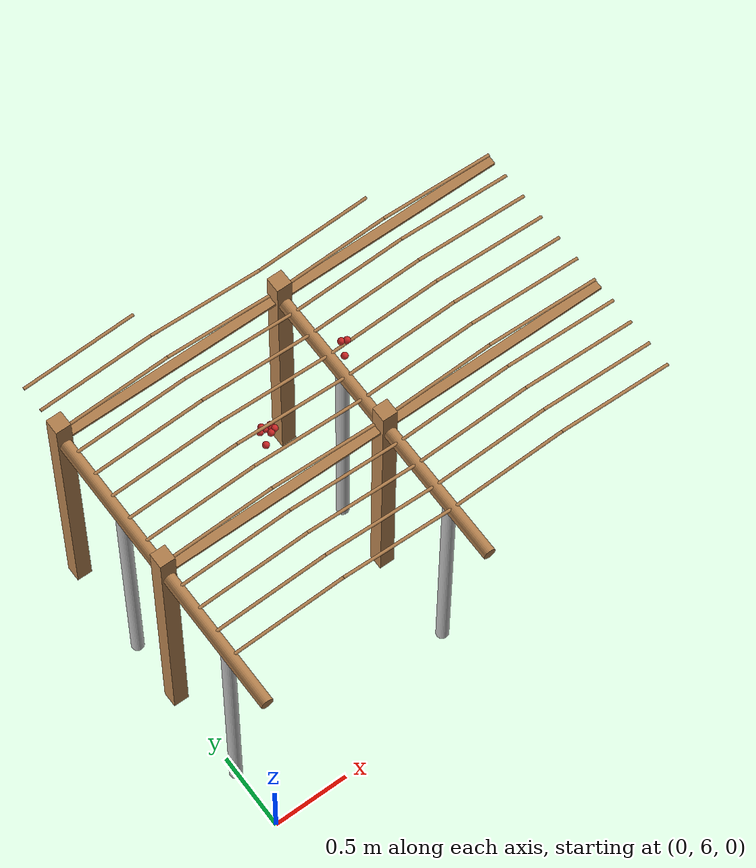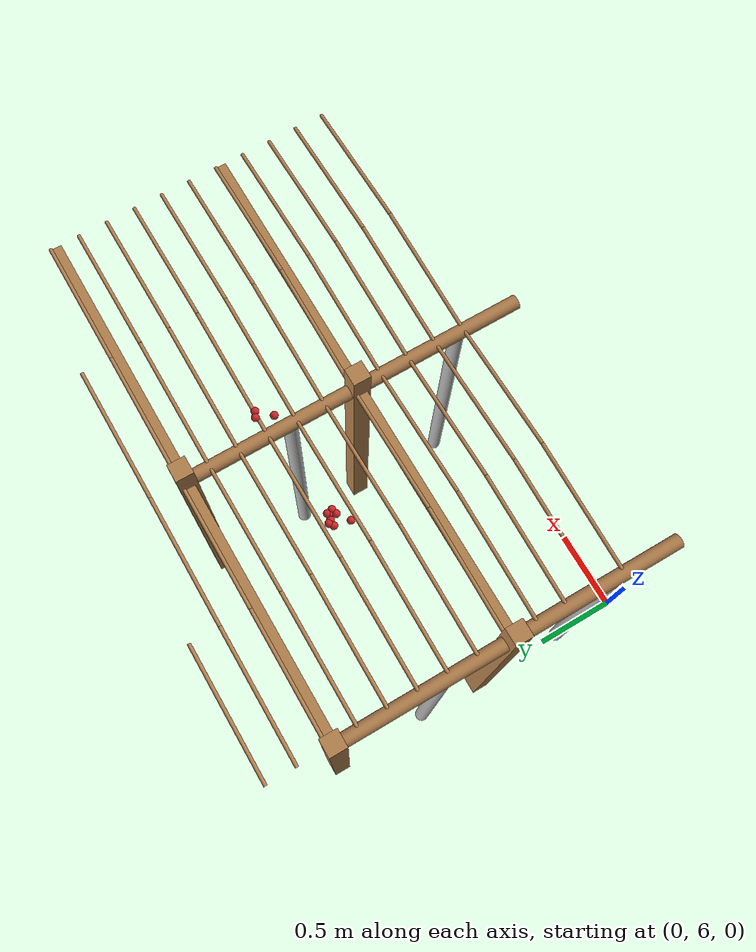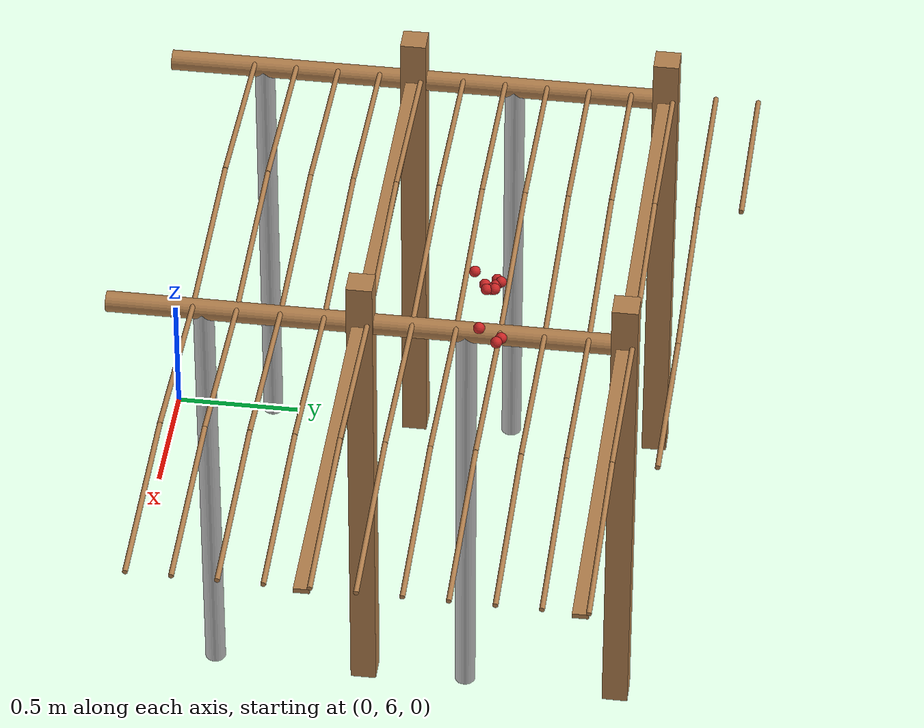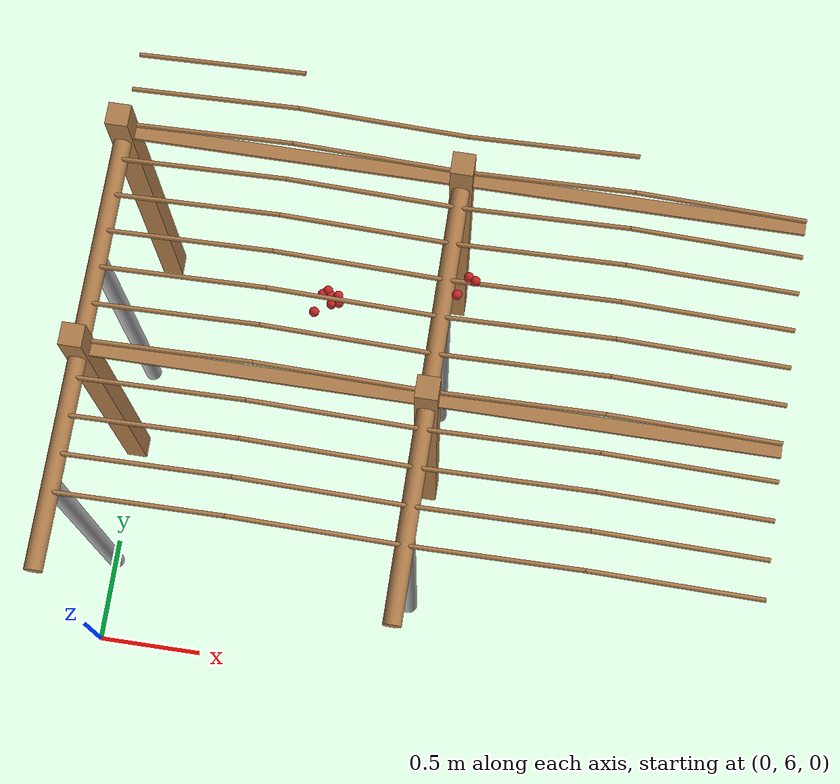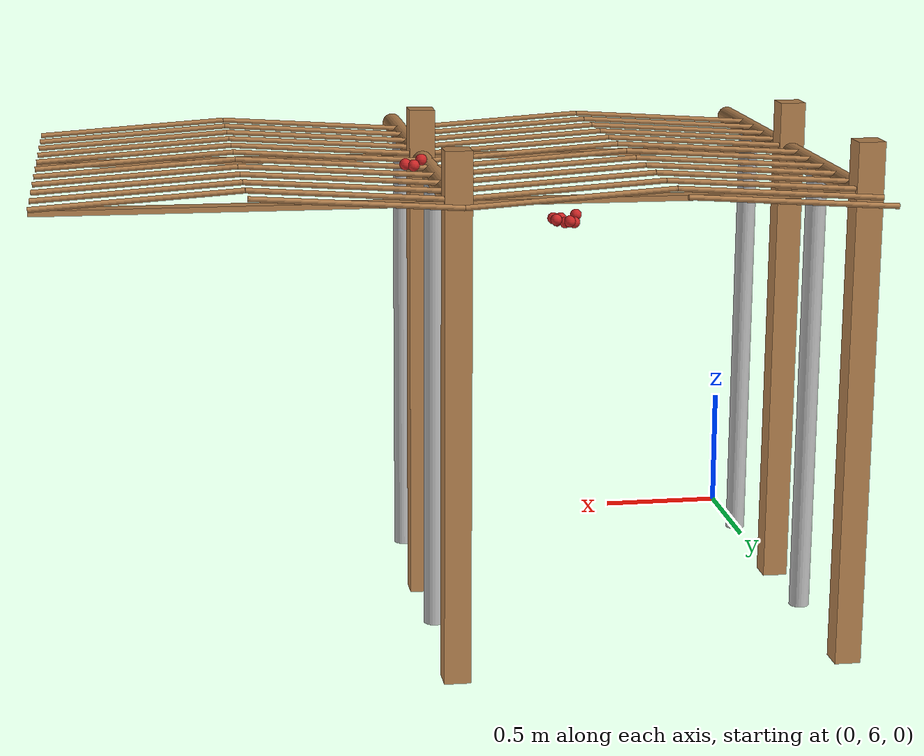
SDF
<sdf version="1.4">
 <model name="pergola">
  <include><name>post_7</name><pose>0.0 7.0 0 0 0 0</pose><uri>model://post</uri></include>
  <include><name>post_8</name><pose>0.0 8.0 0 0 0 0</pose><uri>model://post</uri></include>
  <include><name>post_18</name><pose>1.5 7.0 0 0 0 0</pose><uri>model://post</uri></include>
  <include><name>post_19</name><pose>1.5 8.0 0 0 0 0</pose><uri>model://post</uri></include>
  <link name="beam_7">
   <pose>0.75 7.0 1.81 0 0 0</pose>
   <collision name="collision"><geometry><box><size>1.5 0.06 0.02</size></box></geometry></collision>
   <visual name="visual">
    <geometry><box><size>1.5 0.06 0.02</size></box></geometry>
    <material><script><name>Gazebo/Wood</name></script></material>
   </visual>
   <inertial>
    <mass>5</mass>
    <inertia>
     <ixx>0.0016666666666666668</ixx>
     <ixy>0.0</ixy>
     <ixz>0.0</ixz>
     <iyy>0.9390000000000001</iyy>
     <iyz>0.0</iyz>
     <izz>0.9376666666666665</izz>
    </inertia>
   </inertial>
  </link>
  <link name="beam_8">
   <pose>0.75 8.0 1.81 0 0 0</pose>
   <collision name="collision"><geometry><box><size>1.5 0.06 0.02</size></box></geometry></collision>
   <visual name="visual">
    <geometry><box><size>1.5 0.06 0.02</size></box></geometry>
    <material><script><name>Gazebo/Wood</name></script></material>
   </visual>
   <inertial>
    <mass>5</mass>
    <inertia>
     <ixx>0.0016666666666666668</ixx>
     <ixy>0.0</ixy>
     <ixz>0.0</ixz>
     <iyy>0.9390000000000001</iyy>
     <iyz>0.0</iyz>
     <izz>0.9376666666666665</izz>
    </inertia>
   </inertial>
  </link>
  <link name="beam_18">
   <pose>2.25 7.0 1.81 0 0 0</pose>
   <collision name="collision"><geometry><box><size>1.5 0.06 0.02</size></box></geometry></collision>
   <visual name="visual">
    <geometry><box><size>1.5 0.06 0.02</size></box></geometry>
    <material><script><name>Gazebo/Wood</name></script></material>
   </visual>
   <inertial>
    <mass>5</mass>
    <inertia>
     <ixx>0.0016666666666666668</ixx>
     <ixy>0.0</ixy>
     <ixz>0.0</ixz>
     <iyy>0.9390000000000001</iyy>
     <iyz>0.0</iyz>
     <izz>0.9376666666666665</izz>
    </inertia>
   </inertial>
  </link>
  <link name="beam_19">
   <pose>2.25 8.0 1.81 0 0 0</pose>
   <collision name="collision"><geometry><box><size>1.5 0.06 0.02</size></box></geometry></collision>
   <visual name="visual">
    <geometry><box><size>1.5 0.06 0.02</size></box></geometry>
    <material><script><name>Gazebo/Wood</name></script></material>
   </visual>
   <inertial>
    <mass>5</mass>
    <inertia>
     <ixx>0.0016666666666666668</ixx>
     <ixy>0.0</ixy>
     <ixz>0.0</ixz>
     <iyy>0.9390000000000001</iyy>
     <iyz>0.0</iyz>
     <izz>0.9376666666666665</izz>
    </inertia>
   </inertial>
  </link>
  <include><name>tree_6</name><pose>0.0 6.4 0 0 0 0</pose><uri>model://tree_trunk</uri></include>
  <include><name>tree_7</name><pose>0.0 7.4 0 0 0 0</pose><uri>model://tree_trunk</uri></include>
  <include><name>tree_16</name><pose>1.5 6.4 0 0 0 0</pose><uri>model://tree_trunk</uri></include>
  <include><name>tree_17</name><pose>1.5 7.4 0 0 0 0</pose><uri>model://tree_trunk</uri></include>
  <link name="baseBranch_6">
   <pose>0.0 6.5 1.8 1.5707963267948966 0 0</pose>
   <collision name="collision">
    <geometry><cylinder><radius>0.04</radius><length>0.94</length></cylinder></geometry>
   </collision>
   <visual name="visual">
    <geometry><cylinder><radius>0.04</radius><length>0.94</length></cylinder></geometry>
    <material><script><name>Gazebo/WoodFloor</name></script></material>
   </visual>
   <inertial>
    <mass>10</mass>
    <inertia>
     <ixx>0.7403333333333334</ixx>
     <ixy>0.0</ixy>
     <ixz>0.0</ixz>
     <iyy>0.7403333333333334</iyy>
     <iyz>0.0</iyz>
     <izz>0.008</izz>
    </inertia>
   </inertial>
  </link>
  <link name="baseBranch_7">
   <pose>0.0 7.5 1.8 1.5707963267948966 0 0</pose>
   <collision name="collision">
    <geometry><cylinder><radius>0.04</radius><length>0.94</length></cylinder></geometry>
   </collision>
   <visual name="visual">
    <geometry><cylinder><radius>0.04</radius><length>0.94</length></cylinder></geometry>
    <material><script><name>Gazebo/WoodFloor</name></script></material>
   </visual>
   <inertial>
    <mass>10</mass>
    <inertia>
     <ixx>0.7403333333333334</ixx>
     <ixy>0.0</ixy>
     <ixz>0.0</ixz>
     <iyy>0.7403333333333334</iyy>
     <iyz>0.0</iyz>
     <izz>0.008</izz>
    </inertia>
   </inertial>
  </link>
  <link name="baseBranch_16">
   <pose>1.5 6.5 1.8 1.5707963267948966 0 0</pose>
   <collision name="collision">
    <geometry><cylinder><radius>0.04</radius><length>0.94</length></cylinder></geometry>
   </collision>
   <visual name="visual">
    <geometry><cylinder><radius>0.04</radius><length>0.94</length></cylinder></geometry>
    <material><script><name>Gazebo/WoodFloor</name></script></material>
   </visual>
   <inertial>
    <mass>10</mass>
    <inertia>
     <ixx>0.7403333333333334</ixx>
     <ixy>0.0</ixy>
     <ixz>0.0</ixz>
     <iyy>0.7403333333333334</iyy>
     <iyz>0.0</iyz>
     <izz>0.008</izz>
    </inertia>
   </inertial>
  </link>
  <link name="baseBranch_17">
   <pose>1.5 7.5 1.8 1.5707963267948966 0 0</pose>
   <collision name="collision">
    <geometry><cylinder><radius>0.04</radius><length>0.94</length></cylinder></geometry>
   </collision>
   <visual name="visual">
    <geometry><cylinder><radius>0.04</radius><length>0.94</length></cylinder></geometry>
    <material><script><name>Gazebo/WoodFloor</name></script></material>
   </visual>
   <inertial>
    <mass>10</mass>
    <inertia>
     <ixx>0.7403333333333334</ixx>
     <ixy>0.0</ixy>
     <ixz>0.0</ixz>
     <iyy>0.7403333333333334</iyy>
     <iyz>0.0</iyz>
     <izz>0.008</izz>
    </inertia>
   </inertial>
  </link>
  <link name="vine_76">
   <pose>0.375 6.363333333333333 1.85 0 1.5042281630190728 0</pose>
   <collision name="collision">
    <geometry><cylinder><radius>0.01</radius><length>0.7516648189186453</length></cylinder></geometry>
   </collision>
   <visual name="visual">
    <geometry><cylinder><radius>0.01</radius><length>0.7516648189186453</length></cylinder></geometry>
    <material><script><name>Gazebo/WoodFloor</name></script></material>
   </visual>
   <inertial>
    <mass>5</mass>
    <inertia>
     <ixx>0.23554166666666657</ixx>
     <ixy>0.0</ixy>
     <ixz>0.0</ixz>
     <iyy>0.23554166666666657</iyy>
     <iyz>0.0</iyz>
     <izz>0.00025</izz>
    </inertia>
   </inertial>
  </link>
  <link name="vine_77">
   <pose>1.125 6.363333333333333 1.85 0 -1.5042281630190728 0</pose>
   <collision name="collision">
    <geometry><cylinder><radius>0.01</radius><length>0.7516648189186453</length></cylinder></geometry>
   </collision>
   <visual name="visual">
    <geometry><cylinder><radius>0.01</radius><length>0.7516648189186453</length></cylinder></geometry>
    <material><script><name>Gazebo/WoodFloor</name></script></material>
   </visual>
   <inertial>
    <mass>5</mass>
    <inertia>
     <ixx>0.23554166666666657</ixx>
     <ixy>0.0</ixy>
     <ixz>0.0</ixz>
     <iyy>0.23554166666666657</iyy>
     <iyz>0.0</iyz>
     <izz>0.00025</izz>
    </inertia>
   </inertial>
  </link>
  <link name="vine_78">
   <pose>0.375 6.53 1.85 0 1.5042281630190728 0</pose>
   <collision name="collision">
    <geometry><cylinder><radius>0.01</radius><length>0.7516648189186453</length></cylinder></geometry>
   </collision>
   <visual name="visual">
    <geometry><cylinder><radius>0.01</radius><length>0.7516648189186453</length></cylinder></geometry>
    <material><script><name>Gazebo/WoodFloor</name></script></material>
   </visual>
   <inertial>
    <mass>5</mass>
    <inertia>
     <ixx>0.23554166666666657</ixx>
     <ixy>0.0</ixy>
     <ixz>0.0</ixz>
     <iyy>0.23554166666666657</iyy>
     <iyz>0.0</iyz>
     <izz>0.00025</izz>
    </inertia>
   </inertial>
  </link>
  <link name="vine_79">
   <pose>1.125 6.53 1.85 0 -1.5042281630190728 0</pose>
   <collision name="collision">
    <geometry><cylinder><radius>0.01</radius><length>0.7516648189186453</length></cylinder></geometry>
   </collision>
   <visual name="visual">
    <geometry><cylinder><radius>0.01</radius><length>0.7516648189186453</length></cylinder></geometry>
    <material><script><name>Gazebo/WoodFloor</name></script></material>
   </visual>
   <inertial>
    <mass>5</mass>
    <inertia>
     <ixx>0.23554166666666657</ixx>
     <ixy>0.0</ixy>
     <ixz>0.0</ixz>
     <iyy>0.23554166666666657</iyy>
     <iyz>0.0</iyz>
     <izz>0.00025</izz>
    </inertia>
   </inertial>
  </link>
  <link name="vine_80">
   <pose>0.375 6.696666666666666 1.85 0 1.5042281630190728 0</pose>
   <collision name="collision">
    <geometry><cylinder><radius>0.01</radius><length>0.7516648189186453</length></cylinder></geometry>
   </collision>
   <visual name="visual">
    <geometry><cylinder><radius>0.01</radius><length>0.7516648189186453</length></cylinder></geometry>
    <material><script><name>Gazebo/WoodFloor</name></script></material>
   </visual>
   <inertial>
    <mass>5</mass>
    <inertia>
     <ixx>0.23554166666666657</ixx>
     <ixy>0.0</ixy>
     <ixz>0.0</ixz>
     <iyy>0.23554166666666657</iyy>
     <iyz>0.0</iyz>
     <izz>0.00025</izz>
    </inertia>
   </inertial>
  </link>
  <link name="vine_81">
   <pose>1.125 6.696666666666666 1.85 0 -1.5042281630190728 0</pose>
   <collision name="collision">
    <geometry><cylinder><radius>0.01</radius><length>0.7516648189186453</length></cylinder></geometry>
   </collision>
   <visual name="visual">
    <geometry><cylinder><radius>0.01</radius><length>0.7516648189186453</length></cylinder></geometry>
    <material><script><name>Gazebo/WoodFloor</name></script></material>
   </visual>
   <inertial>
    <mass>5</mass>
    <inertia>
     <ixx>0.23554166666666657</ixx>
     <ixy>0.0</ixy>
     <ixz>0.0</ixz>
     <iyy>0.23554166666666657</iyy>
     <iyz>0.0</iyz>
     <izz>0.00025</izz>
    </inertia>
   </inertial>
  </link>
  <link name="vine_82">
   <pose>0.375 6.863333333333333 1.85 0 1.5042281630190728 0</pose>
   <collision name="collision">
    <geometry><cylinder><radius>0.01</radius><length>0.7516648189186453</length></cylinder></geometry>
   </collision>
   <visual name="visual">
    <geometry><cylinder><radius>0.01</radius><length>0.7516648189186453</length></cylinder></geometry>
    <material><script><name>Gazebo/WoodFloor</name></script></material>
   </visual>
   <inertial>
    <mass>5</mass>
    <inertia>
     <ixx>0.23554166666666657</ixx>
     <ixy>0.0</ixy>
     <ixz>0.0</ixz>
     <iyy>0.23554166666666657</iyy>
     <iyz>0.0</iyz>
     <izz>0.00025</izz>
    </inertia>
   </inertial>
  </link>
  <link name="vine_83">
   <pose>1.125 6.863333333333333 1.85 0 -1.5042281630190728 0</pose>
   <collision name="collision">
    <geometry><cylinder><radius>0.01</radius><length>0.7516648189186453</length></cylinder></geometry>
   </collision>
   <visual name="visual">
    <geometry><cylinder><radius>0.01</radius><length>0.7516648189186453</length></cylinder></geometry>
    <material><script><name>Gazebo/WoodFloor</name></script></material>
   </visual>
   <inertial>
    <mass>5</mass>
    <inertia>
     <ixx>0.23554166666666657</ixx>
     <ixy>0.0</ixy>
     <ixz>0.0</ixz>
     <iyy>0.23554166666666657</iyy>
     <iyz>0.0</iyz>
     <izz>0.00025</izz>
    </inertia>
   </inertial>
  </link>
  <link name="vine_84">
   <pose>0.375 7.03 1.85 0 1.5042281630190728 0</pose>
   <collision name="collision">
    <geometry><cylinder><radius>0.01</radius><length>0.7516648189186453</length></cylinder></geometry>
   </collision>
   <visual name="visual">
    <geometry><cylinder><radius>0.01</radius><length>0.7516648189186453</length></cylinder></geometry>
    <material><script><name>Gazebo/WoodFloor</name></script></material>
   </visual>
   <inertial>
    <mass>5</mass>
    <inertia>
     <ixx>0.23554166666666657</ixx>
     <ixy>0.0</ixy>
     <ixz>0.0</ixz>
     <iyy>0.23554166666666657</iyy>
     <iyz>0.0</iyz>
     <izz>0.00025</izz>
    </inertia>
   </inertial>
  </link>
  <link name="vine_85">
   <pose>1.125 7.03 1.85 0 -1.5042281630190728 0</pose>
   <collision name="collision">
    <geometry><cylinder><radius>0.01</radius><length>0.7516648189186453</length></cylinder></geometry>
   </collision>
   <visual name="visual">
    <geometry><cylinder><radius>0.01</radius><length>0.7516648189186453</length></cylinder></geometry>
    <material><script><name>Gazebo/WoodFloor</name></script></material>
   </visual>
   <inertial>
    <mass>5</mass>
    <inertia>
     <ixx>0.23554166666666657</ixx>
     <ixy>0.0</ixy>
     <ixz>0.0</ixz>
     <iyy>0.23554166666666657</iyy>
     <iyz>0.0</iyz>
     <izz>0.00025</izz>
    </inertia>
   </inertial>
  </link>
  <link name="vine_86">
   <pose>0.375 7.196666666666666 1.85 0 1.5042281630190728 0</pose>
   <collision name="collision">
    <geometry><cylinder><radius>0.01</radius><length>0.7516648189186453</length></cylinder></geometry>
   </collision>
   <visual name="visual">
    <geometry><cylinder><radius>0.01</radius><length>0.7516648189186453</length></cylinder></geometry>
    <material><script><name>Gazebo/WoodFloor</name></script></material>
   </visual>
   <inertial>
    <mass>5</mass>
    <inertia>
     <ixx>0.23554166666666657</ixx>
     <ixy>0.0</ixy>
     <ixz>0.0</ixz>
     <iyy>0.23554166666666657</iyy>
     <iyz>0.0</iyz>
     <izz>0.00025</izz>
    </inertia>
   </inertial>
  </link>
  <link name="vine_87">
   <pose>1.125 7.196666666666666 1.85 0 -1.5042281630190728 0</pose>
   <collision name="collision">
    <geometry><cylinder><radius>0.01</radius><length>0.7516648189186453</length></cylinder></geometry>
   </collision>
   <visual name="visual">
    <geometry><cylinder><radius>0.01</radius><length>0.7516648189186453</length></cylinder></geometry>
    <material><script><name>Gazebo/WoodFloor</name></script></material>
   </visual>
   <inertial>
    <mass>5</mass>
    <inertia>
     <ixx>0.23554166666666657</ixx>
     <ixy>0.0</ixy>
     <ixz>0.0</ixz>
     <iyy>0.23554166666666657</iyy>
     <iyz>0.0</iyz>
     <izz>0.00025</izz>
    </inertia>
   </inertial>
  </link>
  <link name="vine_88">
   <pose>0.375 7.363333333333333 1.85 0 1.5042281630190728 0</pose>
   <collision name="collision">
    <geometry><cylinder><radius>0.01</radius><length>0.7516648189186453</length></cylinder></geometry>
   </collision>
   <visual name="visual">
    <geometry><cylinder><radius>0.01</radius><length>0.7516648189186453</length></cylinder></geometry>
    <material><script><name>Gazebo/WoodFloor</name></script></material>
   </visual>
   <inertial>
    <mass>5</mass>
    <inertia>
     <ixx>0.23554166666666657</ixx>
     <ixy>0.0</ixy>
     <ixz>0.0</ixz>
     <iyy>0.23554166666666657</iyy>
     <iyz>0.0</iyz>
     <izz>0.00025</izz>
    </inertia>
   </inertial>
  </link>
  <link name="vine_89">
   <pose>1.125 7.363333333333333 1.85 0 -1.5042281630190728 0</pose>
   <collision name="collision">
    <geometry><cylinder><radius>0.01</radius><length>0.7516648189186453</length></cylinder></geometry>
   </collision>
   <visual name="visual">
    <geometry><cylinder><radius>0.01</radius><length>0.7516648189186453</length></cylinder></geometry>
    <material><script><name>Gazebo/WoodFloor</name></script></material>
   </visual>
   <inertial>
    <mass>5</mass>
    <inertia>
     <ixx>0.23554166666666657</ixx>
     <ixy>0.0</ixy>
     <ixz>0.0</ixz>
     <iyy>0.23554166666666657</iyy>
     <iyz>0.0</iyz>
     <izz>0.00025</izz>
    </inertia>
   </inertial>
  </link>
  <link name="vine_90">
   <pose>0.375 7.53 1.85 0 1.5042281630190728 0</pose>
   <collision name="collision">
    <geometry><cylinder><radius>0.01</radius><length>0.7516648189186453</length></cylinder></geometry>
   </collision>
   <visual name="visual">
    <geometry><cylinder><radius>0.01</radius><length>0.7516648189186453</length></cylinder></geometry>
    <material><script><name>Gazebo/WoodFloor</name></script></material>
   </visual>
   <inertial>
    <mass>5</mass>
    <inertia>
     <ixx>0.23554166666666657</ixx>
     <ixy>0.0</ixy>
     <ixz>0.0</ixz>
     <iyy>0.23554166666666657</iyy>
     <iyz>0.0</iyz>
     <izz>0.00025</izz>
    </inertia>
   </inertial>
  </link>
  <link name="vine_91">
   <pose>1.125 7.53 1.85 0 -1.5042281630190728 0</pose>
   <collision name="collision">
    <geometry><cylinder><radius>0.01</radius><length>0.7516648189186453</length></cylinder></geometry>
   </collision>
   <visual name="visual">
    <geometry><cylinder><radius>0.01</radius><length>0.7516648189186453</length></cylinder></geometry>
    <material><script><name>Gazebo/WoodFloor</name></script></material>
   </visual>
   <inertial>
    <mass>5</mass>
    <inertia>
     <ixx>0.23554166666666657</ixx>
     <ixy>0.0</ixy>
     <ixz>0.0</ixz>
     <iyy>0.23554166666666657</iyy>
     <iyz>0.0</iyz>
     <izz>0.00025</izz>
    </inertia>
   </inertial>
  </link>
  <link name="vine_92">
   <pose>0.375 7.696666666666666 1.85 0 1.5042281630190728 0</pose>
   <collision name="collision">
    <geometry><cylinder><radius>0.01</radius><length>0.7516648189186453</length></cylinder></geometry>
   </collision>
   <visual name="visual">
    <geometry><cylinder><radius>0.01</radius><length>0.7516648189186453</length></cylinder></geometry>
    <material><script><name>Gazebo/WoodFloor</name></script></material>
   </visual>
   <inertial>
    <mass>5</mass>
    <inertia>
     <ixx>0.23554166666666657</ixx>
     <ixy>0.0</ixy>
     <ixz>0.0</ixz>
     <iyy>0.23554166666666657</iyy>
     <iyz>0.0</iyz>
     <izz>0.00025</izz>
    </inertia>
   </inertial>
  </link>
  <link name="vine_93">
   <pose>1.125 7.696666666666666 1.85 0 -1.5042281630190728 0</pose>
   <collision name="collision">
    <geometry><cylinder><radius>0.01</radius><length>0.7516648189186453</length></cylinder></geometry>
   </collision>
   <visual name="visual">
    <geometry><cylinder><radius>0.01</radius><length>0.7516648189186453</length></cylinder></geometry>
    <material><script><name>Gazebo/WoodFloor</name></script></material>
   </visual>
   <inertial>
    <mass>5</mass>
    <inertia>
     <ixx>0.23554166666666657</ixx>
     <ixy>0.0</ixy>
     <ixz>0.0</ixz>
     <iyy>0.23554166666666657</iyy>
     <iyz>0.0</iyz>
     <izz>0.00025</izz>
    </inertia>
   </inertial>
  </link>
  <link name="vine_94">
   <pose>0.375 7.863333333333333 1.85 0 1.5042281630190728 0</pose>
   <collision name="collision">
    <geometry><cylinder><radius>0.01</radius><length>0.7516648189186453</length></cylinder></geometry>
   </collision>
   <visual name="visual">
    <geometry><cylinder><radius>0.01</radius><length>0.7516648189186453</length></cylinder></geometry>
    <material><script><name>Gazebo/WoodFloor</name></script></material>
   </visual>
   <inertial>
    <mass>5</mass>
    <inertia>
     <ixx>0.23554166666666657</ixx>
     <ixy>0.0</ixy>
     <ixz>0.0</ixz>
     <iyy>0.23554166666666657</iyy>
     <iyz>0.0</iyz>
     <izz>0.00025</izz>
    </inertia>
   </inertial>
  </link>
  <link name="vine_95">
   <pose>1.125 7.863333333333333 1.85 0 -1.5042281630190728 0</pose>
   <collision name="collision">
    <geometry><cylinder><radius>0.01</radius><length>0.7516648189186453</length></cylinder></geometry>
   </collision>
   <visual name="visual">
    <geometry><cylinder><radius>0.01</radius><length>0.7516648189186453</length></cylinder></geometry>
    <material><script><name>Gazebo/WoodFloor</name></script></material>
   </visual>
   <inertial>
    <mass>5</mass>
    <inertia>
     <ixx>0.23554166666666657</ixx>
     <ixy>0.0</ixy>
     <ixz>0.0</ixz>
     <iyy>0.23554166666666657</iyy>
     <iyz>0.0</iyz>
     <izz>0.00025</izz>
    </inertia>
   </inertial>
  </link>
  <link name="vine_96">
   <pose>0.375 8.03 1.85 0 1.5042281630190728 0</pose>
   <collision name="collision">
    <geometry><cylinder><radius>0.01</radius><length>0.7516648189186453</length></cylinder></geometry>
   </collision>
   <visual name="visual">
    <geometry><cylinder><radius>0.01</radius><length>0.7516648189186453</length></cylinder></geometry>
    <material><script><name>Gazebo/WoodFloor</name></script></material>
   </visual>
   <inertial>
    <mass>5</mass>
    <inertia>
     <ixx>0.23554166666666657</ixx>
     <ixy>0.0</ixy>
     <ixz>0.0</ixz>
     <iyy>0.23554166666666657</iyy>
     <iyz>0.0</iyz>
     <izz>0.00025</izz>
    </inertia>
   </inertial>
  </link>
  <link name="vine_97">
   <pose>1.125 8.03 1.85 0 -1.5042281630190728 0</pose>
   <collision name="collision">
    <geometry><cylinder><radius>0.01</radius><length>0.7516648189186453</length></cylinder></geometry>
   </collision>
   <visual name="visual">
    <geometry><cylinder><radius>0.01</radius><length>0.7516648189186453</length></cylinder></geometry>
    <material><script><name>Gazebo/WoodFloor</name></script></material>
   </visual>
   <inertial>
    <mass>5</mass>
    <inertia>
     <ixx>0.23554166666666657</ixx>
     <ixy>0.0</ixy>
     <ixz>0.0</ixz>
     <iyy>0.23554166666666657</iyy>
     <iyz>0.0</iyz>
     <izz>0.00025</izz>
    </inertia>
   </inertial>
  </link>
  <link name="vine_98">
   <pose>0.375 8.196666666666665 1.85 0 1.5042281630190728 0</pose>
   <collision name="collision">
    <geometry><cylinder><radius>0.01</radius><length>0.7516648189186453</length></cylinder></geometry>
   </collision>
   <visual name="visual">
    <geometry><cylinder><radius>0.01</radius><length>0.7516648189186453</length></cylinder></geometry>
    <material><script><name>Gazebo/WoodFloor</name></script></material>
   </visual>
   <inertial>
    <mass>5</mass>
    <inertia>
     <ixx>0.23554166666666657</ixx>
     <ixy>0.0</ixy>
     <ixz>0.0</ixz>
     <iyy>0.23554166666666657</iyy>
     <iyz>0.0</iyz>
     <izz>0.00025</izz>
    </inertia>
   </inertial>
  </link>
  <link name="vine_99">
   <pose>1.125 8.196666666666665 1.85 0 -1.5042281630190728 0</pose>
   <collision name="collision">
    <geometry><cylinder><radius>0.01</radius><length>0.7516648189186453</length></cylinder></geometry>
   </collision>
   <visual name="visual">
    <geometry><cylinder><radius>0.01</radius><length>0.7516648189186453</length></cylinder></geometry>
    <material><script><name>Gazebo/WoodFloor</name></script></material>
   </visual>
   <inertial>
    <mass>5</mass>
    <inertia>
     <ixx>0.23554166666666657</ixx>
     <ixy>0.0</ixy>
     <ixz>0.0</ixz>
     <iyy>0.23554166666666657</iyy>
     <iyz>0.0</iyz>
     <izz>0.00025</izz>
    </inertia>
   </inertial>
  </link>
  <link name="vine_100">
   <pose>0.375 8.363333333333332 1.85 0 1.5042281630190728 0</pose>
   <collision name="collision">
    <geometry><cylinder><radius>0.01</radius><length>0.7516648189186453</length></cylinder></geometry>
   </collision>
   <visual name="visual">
    <geometry><cylinder><radius>0.01</radius><length>0.7516648189186453</length></cylinder></geometry>
    <material><script><name>Gazebo/WoodFloor</name></script></material>
   </visual>
   <inertial>
    <mass>5</mass>
    <inertia>
     <ixx>0.23554166666666657</ixx>
     <ixy>0.0</ixy>
     <ixz>0.0</ixz>
     <iyy>0.23554166666666657</iyy>
     <iyz>0.0</iyz>
     <izz>0.00025</izz>
    </inertia>
   </inertial>
  </link>
  <link name="vine_196">
   <pose>1.875 6.363333333333333 1.85 0 1.5042281630190728 0</pose>
   <collision name="collision">
    <geometry><cylinder><radius>0.01</radius><length>0.7516648189186453</length></cylinder></geometry>
   </collision>
   <visual name="visual">
    <geometry><cylinder><radius>0.01</radius><length>0.7516648189186453</length></cylinder></geometry>
    <material><script><name>Gazebo/WoodFloor</name></script></material>
   </visual>
   <inertial>
    <mass>5</mass>
    <inertia>
     <ixx>0.23554166666666657</ixx>
     <ixy>0.0</ixy>
     <ixz>0.0</ixz>
     <iyy>0.23554166666666657</iyy>
     <iyz>0.0</iyz>
     <izz>0.00025</izz>
    </inertia>
   </inertial>
  </link>
  <link name="vine_197">
   <pose>2.625 6.363333333333333 1.85 0 -1.5042281630190728 0</pose>
   <collision name="collision">
    <geometry><cylinder><radius>0.01</radius><length>0.7516648189186453</length></cylinder></geometry>
   </collision>
   <visual name="visual">
    <geometry><cylinder><radius>0.01</radius><length>0.7516648189186453</length></cylinder></geometry>
    <material><script><name>Gazebo/WoodFloor</name></script></material>
   </visual>
   <inertial>
    <mass>5</mass>
    <inertia>
     <ixx>0.23554166666666657</ixx>
     <ixy>0.0</ixy>
     <ixz>0.0</ixz>
     <iyy>0.23554166666666657</iyy>
     <iyz>0.0</iyz>
     <izz>0.00025</izz>
    </inertia>
   </inertial>
  </link>
  <link name="vine_198">
   <pose>1.875 6.53 1.85 0 1.5042281630190728 0</pose>
   <collision name="collision">
    <geometry><cylinder><radius>0.01</radius><length>0.7516648189186453</length></cylinder></geometry>
   </collision>
   <visual name="visual">
    <geometry><cylinder><radius>0.01</radius><length>0.7516648189186453</length></cylinder></geometry>
    <material><script><name>Gazebo/WoodFloor</name></script></material>
   </visual>
   <inertial>
    <mass>5</mass>
    <inertia>
     <ixx>0.23554166666666657</ixx>
     <ixy>0.0</ixy>
     <ixz>0.0</ixz>
     <iyy>0.23554166666666657</iyy>
     <iyz>0.0</iyz>
     <izz>0.00025</izz>
    </inertia>
   </inertial>
  </link>
  <link name="vine_199">
   <pose>2.625 6.53 1.85 0 -1.5042281630190728 0</pose>
   <collision name="collision">
    <geometry><cylinder><radius>0.01</radius><length>0.7516648189186453</length></cylinder></geometry>
   </collision>
   <visual name="visual">
    <geometry><cylinder><radius>0.01</radius><length>0.7516648189186453</length></cylinder></geometry>
    <material><script><name>Gazebo/WoodFloor</name></script></material>
   </visual>
   <inertial>
    <mass>5</mass>
    <inertia>
     <ixx>0.23554166666666657</ixx>
     <ixy>0.0</ixy>
     <ixz>0.0</ixz>
     <iyy>0.23554166666666657</iyy>
     <iyz>0.0</iyz>
     <izz>0.00025</izz>
    </inertia>
   </inertial>
  </link>
  <link name="vine_200">
   <pose>1.875 6.696666666666666 1.85 0 1.5042281630190728 0</pose>
   <collision name="collision">
    <geometry><cylinder><radius>0.01</radius><length>0.7516648189186453</length></cylinder></geometry>
   </collision>
   <visual name="visual">
    <geometry><cylinder><radius>0.01</radius><length>0.7516648189186453</length></cylinder></geometry>
    <material><script><name>Gazebo/WoodFloor</name></script></material>
   </visual>
   <inertial>
    <mass>5</mass>
    <inertia>
     <ixx>0.23554166666666657</ixx>
     <ixy>0.0</ixy>
     <ixz>0.0</ixz>
     <iyy>0.23554166666666657</iyy>
     <iyz>0.0</iyz>
     <izz>0.00025</izz>
    </inertia>
   </inertial>
  </link>
  <link name="vine_201">
   <pose>2.625 6.696666666666666 1.85 0 -1.5042281630190728 0</pose>
   <collision name="collision">
    <geometry><cylinder><radius>0.01</radius><length>0.7516648189186453</length></cylinder></geometry>
   </collision>
   <visual name="visual">
    <geometry><cylinder><radius>0.01</radius><length>0.7516648189186453</length></cylinder></geometry>
    <material><script><name>Gazebo/WoodFloor</name></script></material>
   </visual>
   <inertial>
    <mass>5</mass>
    <inertia>
     <ixx>0.23554166666666657</ixx>
     <ixy>0.0</ixy>
     <ixz>0.0</ixz>
     <iyy>0.23554166666666657</iyy>
     <iyz>0.0</iyz>
     <izz>0.00025</izz>
    </inertia>
   </inertial>
  </link>
  <link name="vine_202">
   <pose>1.875 6.863333333333333 1.85 0 1.5042281630190728 0</pose>
   <collision name="collision">
    <geometry><cylinder><radius>0.01</radius><length>0.7516648189186453</length></cylinder></geometry>
   </collision>
   <visual name="visual">
    <geometry><cylinder><radius>0.01</radius><length>0.7516648189186453</length></cylinder></geometry>
    <material><script><name>Gazebo/WoodFloor</name></script></material>
   </visual>
   <inertial>
    <mass>5</mass>
    <inertia>
     <ixx>0.23554166666666657</ixx>
     <ixy>0.0</ixy>
     <ixz>0.0</ixz>
     <iyy>0.23554166666666657</iyy>
     <iyz>0.0</iyz>
     <izz>0.00025</izz>
    </inertia>
   </inertial>
  </link>
  <link name="vine_203">
   <pose>2.625 6.863333333333333 1.85 0 -1.5042281630190728 0</pose>
   <collision name="collision">
    <geometry><cylinder><radius>0.01</radius><length>0.7516648189186453</length></cylinder></geometry>
   </collision>
   <visual name="visual">
    <geometry><cylinder><radius>0.01</radius><length>0.7516648189186453</length></cylinder></geometry>
    <material><script><name>Gazebo/WoodFloor</name></script></material>
   </visual>
   <inertial>
    <mass>5</mass>
    <inertia>
     <ixx>0.23554166666666657</ixx>
     <ixy>0.0</ixy>
     <ixz>0.0</ixz>
     <iyy>0.23554166666666657</iyy>
     <iyz>0.0</iyz>
     <izz>0.00025</izz>
    </inertia>
   </inertial>
  </link>
  <link name="vine_204">
   <pose>1.875 7.03 1.85 0 1.5042281630190728 0</pose>
   <collision name="collision">
    <geometry><cylinder><radius>0.01</radius><length>0.7516648189186453</length></cylinder></geometry>
   </collision>
   <visual name="visual">
    <geometry><cylinder><radius>0.01</radius><length>0.7516648189186453</length></cylinder></geometry>
    <material><script><name>Gazebo/WoodFloor</name></script></material>
   </visual>
   <inertial>
    <mass>5</mass>
    <inertia>
     <ixx>0.23554166666666657</ixx>
     <ixy>0.0</ixy>
     <ixz>0.0</ixz>
     <iyy>0.23554166666666657</iyy>
     <iyz>0.0</iyz>
     <izz>0.00025</izz>
    </inertia>
   </inertial>
  </link>
  <link name="vine_205">
   <pose>2.625 7.03 1.85 0 -1.5042281630190728 0</pose>
   <collision name="collision">
    <geometry><cylinder><radius>0.01</radius><length>0.7516648189186453</length></cylinder></geometry>
   </collision>
   <visual name="visual">
    <geometry><cylinder><radius>0.01</radius><length>0.7516648189186453</length></cylinder></geometry>
    <material><script><name>Gazebo/WoodFloor</name></script></material>
   </visual>
   <inertial>
    <mass>5</mass>
    <inertia>
     <ixx>0.23554166666666657</ixx>
     <ixy>0.0</ixy>
     <ixz>0.0</ixz>
     <iyy>0.23554166666666657</iyy>
     <iyz>0.0</iyz>
     <izz>0.00025</izz>
    </inertia>
   </inertial>
  </link>
  <link name="vine_206">
   <pose>1.875 7.196666666666666 1.85 0 1.5042281630190728 0</pose>
   <collision name="collision">
    <geometry><cylinder><radius>0.01</radius><length>0.7516648189186453</length></cylinder></geometry>
   </collision>
   <visual name="visual">
    <geometry><cylinder><radius>0.01</radius><length>0.7516648189186453</length></cylinder></geometry>
    <material><script><name>Gazebo/WoodFloor</name></script></material>
   </visual>
   <inertial>
    <mass>5</mass>
    <inertia>
     <ixx>0.23554166666666657</ixx>
     <ixy>0.0</ixy>
     <ixz>0.0</ixz>
     <iyy>0.23554166666666657</iyy>
     <iyz>0.0</iyz>
     <izz>0.00025</izz>
    </inertia>
   </inertial>
  </link>
  <link name="vine_207">
   <pose>2.625 7.196666666666666 1.85 0 -1.5042281630190728 0</pose>
   <collision name="collision">
    <geometry><cylinder><radius>0.01</radius><length>0.7516648189186453</length></cylinder></geometry>
   </collision>
   <visual name="visual">
    <geometry><cylinder><radius>0.01</radius><length>0.7516648189186453</length></cylinder></geometry>
    <material><script><name>Gazebo/WoodFloor</name></script></material>
   </visual>
   <inertial>
    <mass>5</mass>
    <inertia>
     <ixx>0.23554166666666657</ixx>
     <ixy>0.0</ixy>
     <ixz>0.0</ixz>
     <iyy>0.23554166666666657</iyy>
     <iyz>0.0</iyz>
     <izz>0.00025</izz>
    </inertia>
   </inertial>
  </link>
  <link name="vine_208">
   <pose>1.875 7.363333333333333 1.85 0 1.5042281630190728 0</pose>
   <collision name="collision">
    <geometry><cylinder><radius>0.01</radius><length>0.7516648189186453</length></cylinder></geometry>
   </collision>
   <visual name="visual">
    <geometry><cylinder><radius>0.01</radius><length>0.7516648189186453</length></cylinder></geometry>
    <material><script><name>Gazebo/WoodFloor</name></script></material>
   </visual>
   <inertial>
    <mass>5</mass>
    <inertia>
     <ixx>0.23554166666666657</ixx>
     <ixy>0.0</ixy>
     <ixz>0.0</ixz>
     <iyy>0.23554166666666657</iyy>
     <iyz>0.0</iyz>
     <izz>0.00025</izz>
    </inertia>
   </inertial>
  </link>
  <link name="vine_209">
   <pose>2.625 7.363333333333333 1.85 0 -1.5042281630190728 0</pose>
   <collision name="collision">
    <geometry><cylinder><radius>0.01</radius><length>0.7516648189186453</length></cylinder></geometry>
   </collision>
   <visual name="visual">
    <geometry><cylinder><radius>0.01</radius><length>0.7516648189186453</length></cylinder></geometry>
    <material><script><name>Gazebo/WoodFloor</name></script></material>
   </visual>
   <inertial>
    <mass>5</mass>
    <inertia>
     <ixx>0.23554166666666657</ixx>
     <ixy>0.0</ixy>
     <ixz>0.0</ixz>
     <iyy>0.23554166666666657</iyy>
     <iyz>0.0</iyz>
     <izz>0.00025</izz>
    </inertia>
   </inertial>
  </link>
  <link name="vine_210">
   <pose>1.875 7.53 1.85 0 1.5042281630190728 0</pose>
   <collision name="collision">
    <geometry><cylinder><radius>0.01</radius><length>0.7516648189186453</length></cylinder></geometry>
   </collision>
   <visual name="visual">
    <geometry><cylinder><radius>0.01</radius><length>0.7516648189186453</length></cylinder></geometry>
    <material><script><name>Gazebo/WoodFloor</name></script></material>
   </visual>
   <inertial>
    <mass>5</mass>
    <inertia>
     <ixx>0.23554166666666657</ixx>
     <ixy>0.0</ixy>
     <ixz>0.0</ixz>
     <iyy>0.23554166666666657</iyy>
     <iyz>0.0</iyz>
     <izz>0.00025</izz>
    </inertia>
   </inertial>
  </link>
  <link name="vine_211">
   <pose>2.625 7.53 1.85 0 -1.5042281630190728 0</pose>
   <collision name="collision">
    <geometry><cylinder><radius>0.01</radius><length>0.7516648189186453</length></cylinder></geometry>
   </collision>
   <visual name="visual">
    <geometry><cylinder><radius>0.01</radius><length>0.7516648189186453</length></cylinder></geometry>
    <material><script><name>Gazebo/WoodFloor</name></script></material>
   </visual>
   <inertial>
    <mass>5</mass>
    <inertia>
     <ixx>0.23554166666666657</ixx>
     <ixy>0.0</ixy>
     <ixz>0.0</ixz>
     <iyy>0.23554166666666657</iyy>
     <iyz>0.0</iyz>
     <izz>0.00025</izz>
    </inertia>
   </inertial>
  </link>
  <link name="vine_212">
   <pose>1.875 7.696666666666666 1.85 0 1.5042281630190728 0</pose>
   <collision name="collision">
    <geometry><cylinder><radius>0.01</radius><length>0.7516648189186453</length></cylinder></geometry>
   </collision>
   <visual name="visual">
    <geometry><cylinder><radius>0.01</radius><length>0.7516648189186453</length></cylinder></geometry>
    <material><script><name>Gazebo/WoodFloor</name></script></material>
   </visual>
   <inertial>
    <mass>5</mass>
    <inertia>
     <ixx>0.23554166666666657</ixx>
     <ixy>0.0</ixy>
     <ixz>0.0</ixz>
     <iyy>0.23554166666666657</iyy>
     <iyz>0.0</iyz>
     <izz>0.00025</izz>
    </inertia>
   </inertial>
  </link>
  <link name="vine_213">
   <pose>2.625 7.696666666666666 1.85 0 -1.5042281630190728 0</pose>
   <collision name="collision">
    <geometry><cylinder><radius>0.01</radius><length>0.7516648189186453</length></cylinder></geometry>
   </collision>
   <visual name="visual">
    <geometry><cylinder><radius>0.01</radius><length>0.7516648189186453</length></cylinder></geometry>
    <material><script><name>Gazebo/WoodFloor</name></script></material>
   </visual>
   <inertial>
    <mass>5</mass>
    <inertia>
     <ixx>0.23554166666666657</ixx>
     <ixy>0.0</ixy>
     <ixz>0.0</ixz>
     <iyy>0.23554166666666657</iyy>
     <iyz>0.0</iyz>
     <izz>0.00025</izz>
    </inertia>
   </inertial>
  </link>
  <link name="vine_214">
   <pose>1.875 7.863333333333333 1.85 0 1.5042281630190728 0</pose>
   <collision name="collision">
    <geometry><cylinder><radius>0.01</radius><length>0.7516648189186453</length></cylinder></geometry>
   </collision>
   <visual name="visual">
    <geometry><cylinder><radius>0.01</radius><length>0.7516648189186453</length></cylinder></geometry>
    <material><script><name>Gazebo/WoodFloor</name></script></material>
   </visual>
   <inertial>
    <mass>5</mass>
    <inertia>
     <ixx>0.23554166666666657</ixx>
     <ixy>0.0</ixy>
     <ixz>0.0</ixz>
     <iyy>0.23554166666666657</iyy>
     <iyz>0.0</iyz>
     <izz>0.00025</izz>
    </inertia>
   </inertial>
  </link>
  <link name="vine_215">
   <pose>2.625 7.863333333333333 1.85 0 -1.5042281630190728 0</pose>
   <collision name="collision">
    <geometry><cylinder><radius>0.01</radius><length>0.7516648189186453</length></cylinder></geometry>
   </collision>
   <visual name="visual">
    <geometry><cylinder><radius>0.01</radius><length>0.7516648189186453</length></cylinder></geometry>
    <material><script><name>Gazebo/WoodFloor</name></script></material>
   </visual>
   <inertial>
    <mass>5</mass>
    <inertia>
     <ixx>0.23554166666666657</ixx>
     <ixy>0.0</ixy>
     <ixz>0.0</ixz>
     <iyy>0.23554166666666657</iyy>
     <iyz>0.0</iyz>
     <izz>0.00025</izz>
    </inertia>
   </inertial>
  </link>
  <link name="vine_216">
   <pose>1.875 8.03 1.85 0 1.5042281630190728 0</pose>
   <collision name="collision">
    <geometry><cylinder><radius>0.01</radius><length>0.7516648189186453</length></cylinder></geometry>
   </collision>
   <visual name="visual">
    <geometry><cylinder><radius>0.01</radius><length>0.7516648189186453</length></cylinder></geometry>
    <material><script><name>Gazebo/WoodFloor</name></script></material>
   </visual>
   <inertial>
    <mass>5</mass>
    <inertia>
     <ixx>0.23554166666666657</ixx>
     <ixy>0.0</ixy>
     <ixz>0.0</ixz>
     <iyy>0.23554166666666657</iyy>
     <iyz>0.0</iyz>
     <izz>0.00025</izz>
    </inertia>
   </inertial>
  </link>
  <link name="vine_217">
   <pose>2.625 8.03 1.85 0 -1.5042281630190728 0</pose>
   <collision name="collision">
    <geometry><cylinder><radius>0.01</radius><length>0.7516648189186453</length></cylinder></geometry>
   </collision>
   <visual name="visual">
    <geometry><cylinder><radius>0.01</radius><length>0.7516648189186453</length></cylinder></geometry>
    <material><script><name>Gazebo/WoodFloor</name></script></material>
   </visual>
   <inertial>
    <mass>5</mass>
    <inertia>
     <ixx>0.23554166666666657</ixx>
     <ixy>0.0</ixy>
     <ixz>0.0</ixz>
     <iyy>0.23554166666666657</iyy>
     <iyz>0.0</iyz>
     <izz>0.00025</izz>
    </inertia>
   </inertial>
  </link>
  <link name="vine_218">
   <pose>1.875 8.196666666666665 1.85 0 1.5042281630190728 0</pose>
   <collision name="collision">
    <geometry><cylinder><radius>0.01</radius><length>0.7516648189186453</length></cylinder></geometry>
   </collision>
   <visual name="visual">
    <geometry><cylinder><radius>0.01</radius><length>0.7516648189186453</length></cylinder></geometry>
    <material><script><name>Gazebo/WoodFloor</name></script></material>
   </visual>
   <inertial>
    <mass>5</mass>
    <inertia>
     <ixx>0.23554166666666657</ixx>
     <ixy>0.0</ixy>
     <ixz>0.0</ixz>
     <iyy>0.23554166666666657</iyy>
     <iyz>0.0</iyz>
     <izz>0.00025</izz>
    </inertia>
   </inertial>
  </link>
  <link name="fruit_48">
   <pose>1.556537235108833 7.45506327550963 1.8728022364519576 0 0 0</pose>
   <collision name="fruit_collision_48"><geometry><sphere><radius>0.022</radius></sphere></geometry></collision>
   <visual name="visual">
    <geometry><sphere><radius>0.022</radius></sphere></geometry>
    <material><script><name>Gazebo/Red</name></script></material>
   </visual>
   <inertial>
    <mass>0.05</mass>
    <inertia>
     <ixx>9.679999999999999e-06</ixx>
     <ixy>0.0</ixy>
     <ixz>0.0</ixz>
     <iyy>9.679999999999999e-06</iyy>
     <iyz>0.0</iyz>
     <izz>9.679999999999999e-06</izz>
    </inertia>
   </inertial>
   <sensor name="fruit_contact_48" type="contact">
    <contact><collision>fruit_collision_48</collision></contact>
   </sensor>
  </link>
  <link name="fruit_73">
   <pose>0.9426826713326907 7.361832103414926 1.6296191863174063 0 0 0</pose>
   <collision name="fruit_collision_73"><geometry><sphere><radius>0.022</radius></sphere></geometry></collision>
   <visual name="visual">
    <geometry><sphere><radius>0.022</radius></sphere></geometry>
    <material><script><name>Gazebo/Red</name></script></material>
   </visual>
   <inertial>
    <mass>0.05</mass>
    <inertia>
     <ixx>9.679999999999999e-06</ixx>
     <ixy>0.0</ixy>
     <ixz>0.0</ixz>
     <iyy>9.679999999999999e-06</iyy>
     <iyz>0.0</iyz>
     <izz>9.679999999999999e-06</izz>
    </inertia>
   </inertial>
   <sensor name="fruit_contact_73" type="contact">
    <contact><collision>fruit_collision_73</collision></contact>
   </sensor>
  </link>
  <link name="fruit_234">
   <pose>1.6257140988549652 7.528259116962784 1.8694792014168864 0 0 0</pose>
   <collision name="fruit_collision_234"><geometry><sphere><radius>0.022</radius></sphere></geometry></collision>
   <visual name="visual">
    <geometry><sphere><radius>0.022</radius></sphere></geometry>
    <material><script><name>Gazebo/Red</name></script></material>
   </visual>
   <inertial>
    <mass>0.05</mass>
    <inertia>
     <ixx>9.679999999999999e-06</ixx>
     <ixy>0.0</ixy>
     <ixz>0.0</ixz>
     <iyy>9.679999999999999e-06</iyy>
     <iyz>0.0</iyz>
     <izz>9.679999999999999e-06</izz>
    </inertia>
   </inertial>
   <sensor name="fruit_contact_234" type="contact">
    <contact><collision>fruit_collision_234</collision></contact>
   </sensor>
  </link>
  <link name="fruit_264">
   <pose>1.0356718140046397 7.449947393164 1.62869169133046 0 0 0</pose>
   <collision name="fruit_collision_264"><geometry><sphere><radius>0.022</radius></sphere></geometry></collision>
   <visual name="visual">
    <geometry><sphere><radius>0.022</radius></sphere></geometry>
    <material><script><name>Gazebo/Red</name></script></material>
   </visual>
   <inertial>
    <mass>0.05</mass>
    <inertia>
     <ixx>9.679999999999999e-06</ixx>
     <ixy>0.0</ixy>
     <ixz>0.0</ixz>
     <iyy>9.679999999999999e-06</iyy>
     <iyz>0.0</iyz>
     <izz>9.679999999999999e-06</izz>
    </inertia>
   </inertial>
   <sensor name="fruit_contact_264" type="contact">
    <contact><collision>fruit_collision_264</collision></contact>
   </sensor>
  </link>
  <link name="fruit_266">
   <pose>1.0425301750509248 7.419317700683808 1.6289994570458561 0 0 0</pose>
   <collision name="fruit_collision_266"><geometry><sphere><radius>0.022</radius></sphere></geometry></collision>
   <visual name="visual">
    <geometry><sphere><radius>0.022</radius></sphere></geometry>
    <material><script><name>Gazebo/Red</name></script></material>
   </visual>
   <inertial>
    <mass>0.05</mass>
    <inertia>
     <ixx>9.679999999999999e-06</ixx>
     <ixy>0.0</ixy>
     <ixz>0.0</ixz>
     <iyy>9.679999999999999e-06</iyy>
     <iyz>0.0</iyz>
     <izz>9.679999999999999e-06</izz>
    </inertia>
   </inertial>
   <sensor name="fruit_contact_266" type="contact">
    <contact><collision>fruit_collision_266</collision></contact>
   </sensor>
  </link>
  <link name="fruit_323">
   <pose>1.0307010328944033 7.437657982087445 1.6228551341280455 0 0 0</pose>
   <collision name="fruit_collision_323"><geometry><sphere><radius>0.022</radius></sphere></geometry></collision>
   <visual name="visual">
    <geometry><sphere><radius>0.022</radius></sphere></geometry>
    <material><script><name>Gazebo/Red</name></script></material>
   </visual>
   <inertial>
    <mass>0.05</mass>
    <inertia>
     <ixx>9.679999999999999e-06</ixx>
     <ixy>0.0</ixy>
     <ixz>0.0</ixz>
     <iyy>9.679999999999999e-06</iyy>
     <iyz>0.0</iyz>
     <izz>9.679999999999999e-06</izz>
    </inertia>
   </inertial>
   <sensor name="fruit_contact_323" type="contact">
    <contact><collision>fruit_collision_323</collision></contact>
   </sensor>
  </link>
  <link name="fruit_326">
   <pose>0.9998113888636588 7.450656469840357 1.617835071127724 0 0 0</pose>
   <collision name="fruit_collision_326"><geometry><sphere><radius>0.022</radius></sphere></geometry></collision>
   <visual name="visual">
    <geometry><sphere><radius>0.022</radius></sphere></geometry>
    <material><script><name>Gazebo/Red</name></script></material>
   </visual>
   <inertial>
    <mass>0.05</mass>
    <inertia>
     <ixx>9.679999999999999e-06</ixx>
     <ixy>0.0</ixy>
     <ixz>0.0</ixz>
     <iyy>9.679999999999999e-06</iyy>
     <iyz>0.0</iyz>
     <izz>9.679999999999999e-06</izz>
    </inertia>
   </inertial>
   <sensor name="fruit_contact_326" type="contact">
    <contact><collision>fruit_collision_326</collision></contact>
   </sensor>
  </link>
  <link name="fruit_338">
   <pose>0.965416995504669 7.451592403855661 1.6172377369193138 0 0 0</pose>
   <collision name="fruit_collision_338"><geometry><sphere><radius>0.022</radius></sphere></geometry></collision>
   <visual name="visual">
    <geometry><sphere><radius>0.022</radius></sphere></geometry>
    <material><script><name>Gazebo/Red</name></script></material>
   </visual>
   <inertial>
    <mass>0.05</mass>
    <inertia>
     <ixx>9.679999999999999e-06</ixx>
     <ixy>0.0</ixy>
     <ixz>0.0</ixz>
     <iyy>9.679999999999999e-06</iyy>
     <iyz>0.0</iyz>
     <izz>9.679999999999999e-06</izz>
    </inertia>
   </inertial>
   <sensor name="fruit_contact_338" type="contact">
    <contact><collision>fruit_collision_338</collision></contact>
   </sensor>
  </link>
  <link name="fruit_349">
   <pose>1.595969645599697 7.542735617858783 1.866245493928343 0 0 0</pose>
   <collision name="fruit_collision_349"><geometry><sphere><radius>0.022</radius></sphere></geometry></collision>
   <visual name="visual">
    <geometry><sphere><radius>0.022</radius></sphere></geometry>
    <material><script><name>Gazebo/Red</name></script></material>
   </visual>
   <inertial>
    <mass>0.05</mass>
    <inertia>
     <ixx>9.679999999999999e-06</ixx>
     <ixy>0.0</ixy>
     <ixz>0.0</ixz>
     <iyy>9.679999999999999e-06</iyy>
     <iyz>0.0</iyz>
     <izz>9.679999999999999e-06</izz>
    </inertia>
   </inertial>
   <sensor name="fruit_contact_349" type="contact">
    <contact><collision>fruit_collision_349</collision></contact>
   </sensor>
  </link>
  <link name="fruit_403">
   <pose>0.9867743142737079 7.46840076062474 1.624866545377101 0 0 0</pose>
   <collision name="fruit_collision_403"><geometry><sphere><radius>0.022</radius></sphere></geometry></collision>
   <visual name="visual">
    <geometry><sphere><radius>0.022</radius></sphere></geometry>
    <material><script><name>Gazebo/Red</name></script></material>
   </visual>
   <inertial>
    <mass>0.05</mass>
    <inertia>
     <ixx>9.679999999999999e-06</ixx>
     <ixy>0.0</ixy>
     <ixz>0.0</ixz>
     <iyy>9.679999999999999e-06</iyy>
     <iyz>0.0</iyz>
     <izz>9.679999999999999e-06</izz>
    </inertia>
   </inertial>
   <sensor name="fruit_contact_403" type="contact">
    <contact><collision>fruit_collision_403</collision></contact>
   </sensor>
  </link>
  <link name="fruit_438">
   <pose>1.011773560073585 7.409269539030233 1.6264007807720307 0 0 0</pose>
   <collision name="fruit_collision_438"><geometry><sphere><radius>0.022</radius></sphere></geometry></collision>
   <visual name="visual">
    <geometry><sphere><radius>0.022</radius></sphere></geometry>
    <material><script><name>Gazebo/Red</name></script></material>
   </visual>
   <inertial>
    <mass>0.05</mass>
    <inertia>
     <ixx>9.679999999999999e-06</ixx>
     <ixy>0.0</ixy>
     <ixz>0.0</ixz>
     <iyy>9.679999999999999e-06</iyy>
     <iyz>0.0</iyz>
     <izz>9.679999999999999e-06</izz>
    </inertia>
   </inertial>
   <sensor name="fruit_contact_438" type="contact">
    <contact><collision>fruit_collision_438</collision></contact>
   </sensor>
  </link>
 </model>
</sdf>
